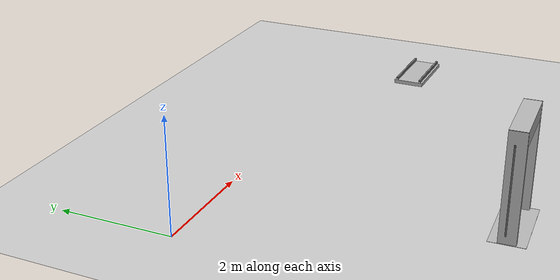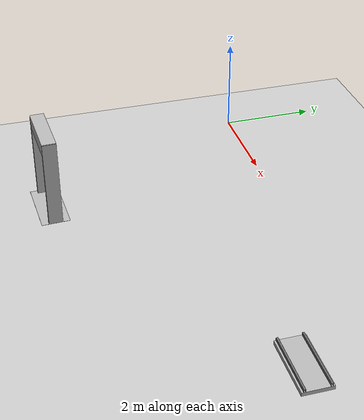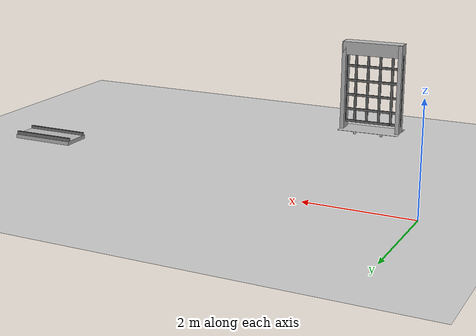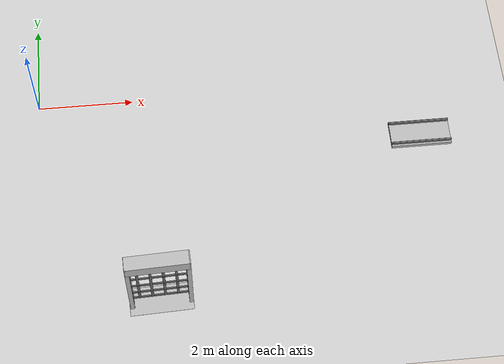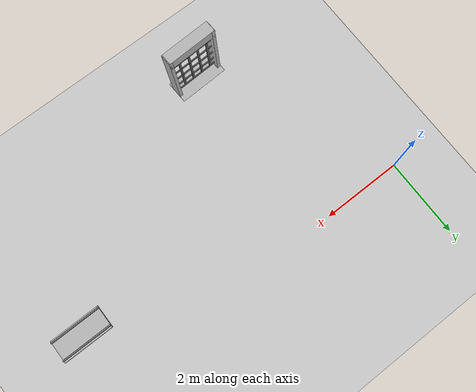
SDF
<sdf version="1.6">
 <world name="default">
  <light name="sun" type="directional">
   <pose>0 0 10 0 -0 0</pose>
   <diffuse>0.8 0.8 0.8 1</diffuse>
   <specular>0.2 0.2 0.2 1</specular>
   <attenuation>
    <range>1000</range>
    <constant>0.9</constant>
    <linear>0.01</linear>
    <quadratic>0.001</quadratic>
   </attenuation>
   <direction>-0.5 0.1 -0.9</direction>
  </light>
  <model name="ground_plane">
   <static>1</static>
   <link name="link">
    <collision name="collision">
     <geometry><plane><normal>0 0 1</normal><size>100 100</size></plane></geometry>
     <surface>
      <contact><collide_bitmask>65535</collide_bitmask></contact>
      <friction><ode><mu>100</mu><mu2>50</mu2></ode></friction>
     </surface>
    </collision>
    <visual name="visual">
     <cast_shadows>0</cast_shadows>
     <geometry><plane><normal>0 0 1</normal><size>100 100</size></plane></geometry>
     <material>
      <script><uri>file://media/materials/scripts/gazebo.material</uri><name>Gazebo/Grey</name></script>
     </material>
    </visual>
   </link>
  </model>
  <gravity>0 0 -9.8</gravity>
  <magnetic_field>6e-06 2.3e-05 -4.2e-05</magnetic_field>
  <atmosphere type="adiabatic"/>
  <physics name="default_physics" default="0" type="ode">
   <max_step_size>0.001</max_step_size>
   <real_time_factor>1</real_time_factor>
   <real_time_update_rate>1000</real_time_update_rate>
  </physics>
  <scene><ambient>0.4 0.4 0.4 1</ambient><background>0.7 0.7 0.7 1</background><shadows>1</shadows></scene>
  <audio><device>default</device></audio>
  <spherical_coordinates>
   <surface_model>EARTH_WGS84</surface_model>
   <latitude_deg>0</latitude_deg>
   <longitude_deg>0</longitude_deg>
   <elevation>0</elevation>
   <heading_deg>0</heading_deg>
  </spherical_coordinates>
  <model name="frc2016_moat">
   <static>1</static>
   <link name="link">
    <inertial>
     <mass>10</mass>
     <pose>0 0 0.06738 0 -0 0</pose>
     <inertia><ixx>0.312195</ixx><ixy>0</ixy><ixz>0</ixz><iyy>1.35927</iyy><iyz>0</iyz><izz>1.64109</izz></inertia>
    </inertial>
    <visual name="platform">
     <pose>0 0 0.0381 0 -0 0</pose>
     <geometry><box><size>1.27 0.5969 0.0762</size></box></geometry>
    </visual>
    <collision name="platform">
     <pose>0 0 0.0381 0 -0 0</pose>
     <geometry><box><size>1.27 0.5969 0.0762</size></box></geometry>
    </collision>
    <visual name="tube1_side1">
     <pose>0 -0.25876 0.10301 0 -0 0</pose>
     <geometry><box><size>1.27 0.003175 0.0635</size></box></geometry>
     <material><ambient>0.46 0.46 0.46 1</ambient><diffuse>0.46 0.46 0.46 1</diffuse></material>
    </visual>
    <collision name="tube1_side1">
     <pose>0 -0.25876 0.10301 0 -0 0</pose>
     <geometry><box><size>1.27 0.003175 0.0635</size></box></geometry>
    </collision>
    <visual name="tube1_side2">
     <pose>0 -0.22384 0.10301 0 -0 0</pose>
     <geometry><box><size>1.27 0.003175 0.0635</size></box></geometry>
     <material><ambient>0.46 0.46 0.46 1</ambient><diffuse>0.46 0.46 0.46 1</diffuse></material>
    </visual>
    <collision name="tube1_side2">
     <pose>0 -0.22384 0.10301 0 -0 0</pose>
     <geometry><box><size>1.27 0.003175 0.0635</size></box></geometry>
    </collision>
    <visual name="tube1_top">
     <pose>0 -0.2413 0.13317 0 -0 0</pose>
     <geometry><box><size>1.27 0.0381 0.003175</size></box></geometry>
     <material><ambient>0.46 0.46 0.46 1</ambient><diffuse>0.46 0.46 0.46 1</diffuse></material>
    </visual>
    <collision name="tube1_top">
     <pose>0 -0.2413 0.13317 0 -0 0</pose>
     <geometry><box><size>1.27 0.0381 0.003175</size></box></geometry>
    </collision>
    <visual name="tube2_side1">
     <pose>0 0.22384 0.10301 0 -0 0</pose>
     <geometry><box><size>1.27 0.003175 0.0635</size></box></geometry>
     <material><ambient>0.46 0.46 0.46 1</ambient><diffuse>0.46 0.46 0.46 1</diffuse></material>
    </visual>
    <collision name="tube2_side1">
     <pose>0 0.22384 0.10301 0 -0 0</pose>
     <geometry><box><size>1.27 0.003175 0.0635</size></box></geometry>
    </collision>
    <visual name="tube2_side2">
     <pose>0 0.25876 0.10301 0 -0 0</pose>
     <geometry><box><size>1.27 0.003175 0.0635</size></box></geometry>
     <material><ambient>0.46 0.46 0.46 1</ambient><diffuse>0.46 0.46 0.46 1</diffuse></material>
    </visual>
    <collision name="tube2_side2">
     <pose>0 0.25876 0.10301 0 -0 0</pose>
     <geometry><box><size>1.27 0.003175 0.0635</size></box></geometry>
    </collision>
    <visual name="tube2_top">
     <pose>0 0.2413 0.13317 0 -0 0</pose>
     <geometry><box><size>1.27 0.0381 0.003175</size></box></geometry>
     <material><ambient>0.46 0.46 0.46 1</ambient><diffuse>0.46 0.46 0.46 1</diffuse></material>
    </visual>
    <collision name="tube2_top">
     <pose>0 0.2413 0.13317 0 -0 0</pose>
     <geometry><box><size>1.27 0.0381 0.003175</size></box></geometry>
    </collision>
   </link>
   <pose>8.06891 -1.33573 0 0 -0 0</pose>
  </model>
  <model name="frc2016_portcullis">
   <link name="base">
    <inertial>
     <mass>50</mass>
     <pose>0 0 1.02941 0 -0 0</pose>
     <inertia><ixx>3.81711</ixx><ixy>0</ixy><ixz>0</ixz><iyy>4.87698</iyy><iyz>0</iyz><izz>1.6283</izz></inertia>
    </inertial>
    <visual name="platform">
     <pose>0 0 0.07284 0 -0 0</pose>
     <geometry><box><size>1.27 0.5842 0.003175</size></box></geometry>
    </visual>
    <collision name="platform">
     <pose>0 0 0.07284 0 -0 0</pose>
     <geometry><box><size>1.27 0.5842 0.003175</size></box></geometry>
    </collision>
    <visual name="left_column">
     <pose>0.59284 0 0.99042 0 -0 0</pose>
     <geometry><box><size>0.08375 0.28575 1.83198</size></box></geometry>
    </visual>
    <collision name="left_column">
     <pose>0.59284 0 0.99042 0 -0 0</pose>
     <geometry><box><size>0.08375 0.28575 1.83198</size></box></geometry>
    </collision>
    <visual name="right_column">
     <pose>-0.57759 0 0.99042 0 -0 0</pose>
     <geometry><box><size>0.08375 0.28575 1.83198</size></box></geometry>
    </visual>
    <collision name="right_column">
     <pose>-0.57759 0 0.99042 0 -0 0</pose>
     <geometry><box><size>0.08375 0.28575 1.83198</size></box></geometry>
    </collision>
    <visual name="top">
     <pose>-0.00034 0 1.77722 0 -0 0</pose>
     <geometry><box><size>1.22962 0.28575 0.26657</size></box></geometry>
    </visual>
    <collision name="top">
     <pose>-0.00034 0 1.77722 0 -0 0</pose>
     <geometry><box><size>1.22962 0.28575 0.26657</size></box></geometry>
    </collision>
    <visual name="castor1">
     <pose>-0.45651 -0.16234 0.03272 0 -0 0</pose>
     <geometry><sphere><radius>0.03272</radius></sphere></geometry>
    </visual>
    <collision name="castor1">
     <pose>-0.45651 -0.16234 0.03272 0 -0 0</pose>
     <geometry><sphere><radius>0.03272</radius></sphere></geometry>
    </collision>
    <visual name="castor2">
     <pose>-0.27883 0.21836 0.03272 0 -0 0</pose>
     <geometry><sphere><radius>0.03272</radius></sphere></geometry>
    </visual>
    <collision name="castor2">
     <pose>-0.27883 0.21836 0.03272 0 -0 0</pose>
     <geometry><sphere><radius>0.03272</radius></sphere></geometry>
    </collision>
    <visual name="castor3">
     <pose>0.28083 0.21906 0.03272 0 -0 0</pose>
     <geometry><sphere><radius>0.03272</radius></sphere></geometry>
    </visual>
    <collision name="castor3">
     <pose>0.28083 0.21906 0.03272 0 -0 0</pose>
     <geometry><sphere><radius>0.03272</radius></sphere></geometry>
    </collision>
    <visual name="castor4">
     <pose>0.45871 -0.16186 0.03272 0 -0 0</pose>
     <geometry><sphere><radius>0.03272</radius></sphere></geometry>
    </visual>
    <collision name="castor4">
     <pose>0.45871 -0.16186 0.03272 0 -0 0</pose>
     <geometry><sphere><radius>0.03272</radius></sphere></geometry>
    </collision>
   </link>
   <link name="gate">
    <pose>-0.0287 0.02885 0.93327 0 -0 0</pose>
    <inertial>
     <mass>2</mass>
     <inertia><ixx>3.81711</ixx><ixy>0</ixy><ixz>0</ixz><iyy>4.87698</iyy><iyz>0</iyz><izz>1.6283</izz></inertia>
    </inertial>
    <collision name="collision"><geometry><box><size>1.1938 0.02496 1.45732</size></box></geometry></collision>
    <visual name="horz_1">
     <pose>0 0 -0.70326 0 -0 0</pose>
     <geometry><box><size>1.1938 0.02496 0.0508</size></box></geometry>
     <material><ambient>0.4 0.4 0.4 1</ambient><diffuse>0.4 0.4 0.4 1</diffuse></material>
    </visual>
    <visual name="horz_2">
     <pose>0 0 -0.44926 0 -0 0</pose>
     <geometry><box><size>1.1938 0.02496 0.0508</size></box></geometry>
     <material><ambient>0.4 0.4 0.4 1</ambient><diffuse>0.4 0.4 0.4 1</diffuse></material>
    </visual>
    <visual name="horz_3">
     <pose>0 0 -0.14517 0 -0 0</pose>
     <geometry><box><size>1.1938 0.02496 0.0508</size></box></geometry>
     <material><ambient>0.4 0.4 0.4 1</ambient><diffuse>0.4 0.4 0.4 1</diffuse></material>
    </visual>
    <visual name="horz_4">
     <pose>0 0 0.16034 0 -0 0</pose>
     <geometry><box><size>1.1938 0.02496 0.0508</size></box></geometry>
     <material><ambient>0.4 0.4 0.4 1</ambient><diffuse>0.4 0.4 0.4 1</diffuse></material>
    </visual>
    <visual name="horz_5">
     <pose>0 0 0.46514 0 -0 0</pose>
     <geometry><box><size>1.1938 0.02496 0.0508</size></box></geometry>
     <material><ambient>0.4 0.4 0.4 1</ambient><diffuse>0.4 0.4 0.4 1</diffuse></material>
    </visual>
    <visual name="horz_6">
     <pose>0 0 0.72994 0 -0 0</pose>
     <geometry><box><size>1.1938 0.02496 0.0508</size></box></geometry>
     <material><ambient>0.4 0.4 0.4 1</ambient><diffuse>0.4 0.4 0.4 1</diffuse></material>
    </visual>
    <visual name="vert_1">
     <pose>-0.58448 0 0 0 -0 0</pose>
     <geometry><box><size>0.02495 0.02496 1.45732</size></box></geometry>
     <material><ambient>0.4 0.4 0.4 1</ambient><diffuse>0.4 0.4 0.4 1</diffuse></material>
    </visual>
    <visual name="vert_2">
     <pose>-0.38128 0 0 0 -0 0</pose>
     <geometry><box><size>0.0508 0.02496 1.45732</size></box></geometry>
     <material><ambient>0.4 0.4 0.4 1</ambient><diffuse>0.4 0.4 0.4 1</diffuse></material>
    </visual>
    <visual name="vert_3">
     <pose>-0.12728 0 0 0 -0 0</pose>
     <geometry><box><size>0.0508 0.02496 1.45732</size></box></geometry>
     <material><ambient>0.4 0.4 0.4 1</ambient><diffuse>0.4 0.4 0.4 1</diffuse></material>
    </visual>
    <visual name="vert_4">
     <pose>0.12672 0 0 0 -0 0</pose>
     <geometry><box><size>0.0508 0.02496 1.45732</size></box></geometry>
     <material><ambient>0.4 0.4 0.4 1</ambient><diffuse>0.4 0.4 0.4 1</diffuse></material>
    </visual>
    <visual name="vert_5">
     <pose>0.38072 0 0 0 -0 0</pose>
     <geometry><box><size>0.0508 0.02496 1.45732</size></box></geometry>
     <material><ambient>0.4 0.4 0.4 1</ambient><diffuse>0.4 0.4 0.4 1</diffuse></material>
    </visual>
    <visual name="vert_6">
     <pose>0.58392 0 0 0 -0 0</pose>
     <geometry><box><size>0.02495 0.02496 1.45732</size></box></geometry>
     <material><ambient>0.4 0.4 0.4 1</ambient><diffuse>0.4 0.4 0.4 1</diffuse></material>
    </visual>
   </link>
   <joint name="joint" type="prismatic">
    <parent>base</parent>
    <child>gate</child>
    <axis>
     <xyz>0 0 1</xyz>
     <limit><lower>0</lower><upper>1</upper></limit>
     <use_parent_model_frame>0</use_parent_model_frame>
     <dynamics><spring_reference>0</spring_reference><spring_stiffness>0</spring_stiffness></dynamics>
    </axis>
   </joint>
   <pose>2.36019 -4.66378 1e-06 -1e-06 -2e-06 0.038961</pose>
  </model>
 </world>
</sdf>
